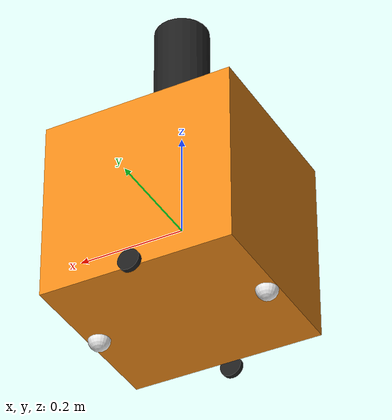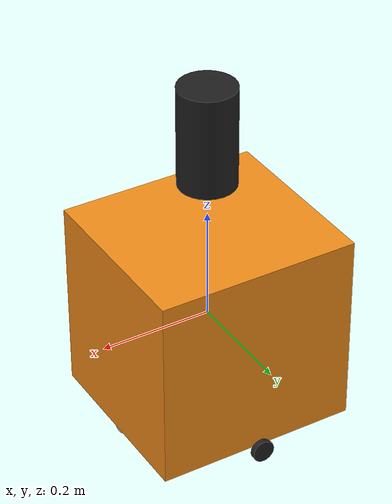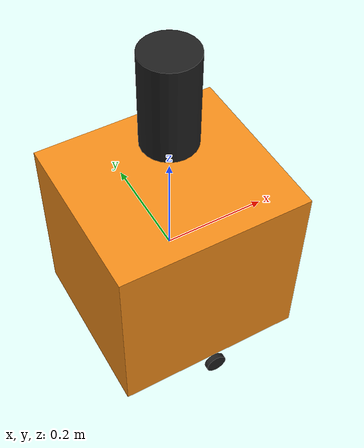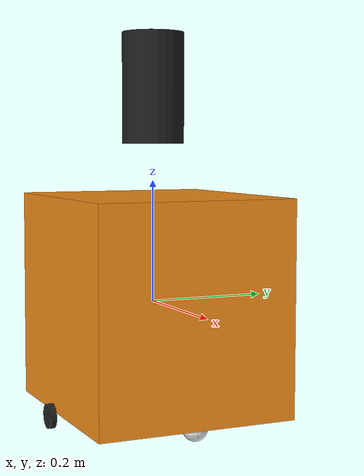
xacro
<?xml version="1.0"?>
<!-- Basic differential drive mobile base -->
<robot xmlns:xacro="http://www.ros.org/wiki/xacro" name="diffdrive_robot">
  <xacro:arg name="use_mock" default="true" />
  <xacro:arg name="prefix" default="" />

  <xacro:include filename="$(find diffdrive_arduino)/urdf/diffbot_description.urdf.xacro" />

  <!-- Import Rviz colors -->
  <xacro:include filename="$(find diffdrive_arduino)/urdf/diffbot.materials.xacro" />

  <!-- Import diffbot ros2_control description -->
  <xacro:include filename="$(find diffdrive_arduino)/ros2_control/diffbot.ros2_control.xacro" />

  <xacro:diffbot prefix="$(arg prefix)" />

  <xacro:diffbot_ros2_control
    name="DiffBot"
    prefix=""
    use_mock="$(arg use_mock)" />
</robot>

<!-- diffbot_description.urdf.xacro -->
<robot xmlns:xacro="http://www.ros.org/wiki/xacro">

  <xacro:macro name="diffbot" params="prefix">

  <!-- Constants for robot dimensions -->
  <xacro:property name="PI" value="3.1415926535897931"/>
  <xacro:property name="base_mass" value="5" /> <!-- arbitrary value for base mass -->
  <xacro:property name="base_width" value="0.36" />
  <xacro:property name="base_length" value="0.33" />
  <xacro:property name="base_height" value="0.35" />
  <xacro:property name="wheel_mass" value="0.3" /> <!-- arbitrary value for wheel mass -->
  <xacro:property name="wheel_len" value="0.010" />
  <xacro:property name="wheel_radius" value="0.020" />
  <xacro:property name="caster_wheel_mass" value="0.2" /> <!-- arbitrary value for caster wheel mass -->
  <xacro:property name="caster_wheel_radius" value="0.020" />
  <xacro:property name="z_offset" value="-${base_height/2}" /> <!-- Space btw top of beam and the each joint -->

  <!-- Base Link -->
  <link name="${prefix}base_link">
    <collision>
      <origin xyz="0 0 ${base_height/2}" rpy="0 0 0"/>
      <geometry>
        <box size="${base_width} ${base_length} ${base_height}"/>
      </geometry>
    </collision>

    <visual>
      <origin xyz="0 0 0" rpy="0 0 0"/>
      <geometry>
        <box size="${base_width} ${base_length} ${base_height}"/>
      </geometry>
      <material name="orange"/>
    </visual>

    <inertial>
      <origin xyz="0 0 0" rpy="0 0 0"/>
      <mass value="${base_mass}"/>
      <inertia
        ixx="${base_mass / 12.0 * (base_length*base_length + base_height*base_height)}" ixy="0.0" ixz="0.0"
        iyy="${base_mass / 12.0 * (base_height*base_height + base_width*base_width)}" iyz="0.0"
        izz="${base_mass / 12.0 * (base_width*base_width + base_length*base_length)}"/>
      </inertial>
    </link>

    <joint name="${prefix}left_wheel_joint" type="continuous">
      <parent link="${prefix}base_link"/>
      <child link="${prefix}left_wheel"/>
      <origin xyz="0 -${base_width/2} ${z_offset}" rpy="0 0 0"/>
      <axis xyz="0 1 0"/>
      <dynamics damping="0.2"/>
    </joint>

    <!-- left wheel Link -->
    <link name="${prefix}left_wheel">
      <collision>
        <origin xyz="0 0 0" rpy="${PI/2} 0 0"/>
        <geometry>
          <cylinder length="${wheel_len}" radius="${wheel_radius}"/>
        </geometry>
      </collision>

      <visual>
        <origin xyz="0 0 0" rpy="${PI/2} 0 0"/>
        <geometry>
          <cylinder length="${wheel_len}" radius="${wheel_radius}"/>
        </geometry>
        <material name="black"/>
      </visual>

      <inertial>
        <origin xyz="0 0 0" rpy="${PI/2} 0 0"/>
        <mass value="${wheel_mass}"/>
        <inertia
          ixx="${wheel_mass / 12.0 * (3*wheel_radius + wheel_len*wheel_len)}" ixy="0.0" ixz="0.0"
          iyy="${wheel_mass / 12.0 * wheel_radius*wheel_radius}" iyz="0.0"
          izz="${wheel_mass / 12.0 * wheel_radius*wheel_radius}"/>
        </inertial>
      </link>

    <joint name="${prefix}right_wheel_joint" type="continuous">
      <parent link="${prefix}base_link"/>
      <child link="${prefix}right_wheel"/>
      <origin xyz="0 ${base_width/2} ${z_offset}" rpy="0 0 0"/>
      <axis xyz="0 1 0"/>
      <dynamics damping="0.2"/>
    </joint>

    <!-- right wheel Link -->
    <link name="${prefix}right_wheel">
      <collision>
        <origin xyz="0 0 0" rpy="${PI/2} 0 0"/>
        <geometry>
          <cylinder length="${wheel_len}" radius="${wheel_radius}"/>
        </geometry>
      </collision>

      <visual>
        <origin xyz="0 0 0" rpy="${PI/2} 0 0"/>
        <geometry>
          <cylinder length="${wheel_len}" radius="${wheel_radius}"/>
        </geometry>
        <material name="black"/>
      </visual>

      <inertial>
        <origin xyz="0 0 0" rpy="${PI/2} 0 0"/>
        <mass value="${wheel_mass}"/>
        <inertia
          ixx="${wheel_mass / 12.0 * (3*wheel_radius + wheel_len*wheel_len)}" ixy="0.0" ixz="0.0"
          iyy="${wheel_mass / 12.0 * wheel_radius*wheel_radius}" iyz="0.0"
          izz="${wheel_mass / 12.0 * wheel_radius*wheel_radius}"/>
        </inertial>
      </link>

    <joint name="${prefix}caster_frontal_wheel_joint" type="fixed">
      <parent link="${prefix}base_link"/>
      <child link="${prefix}caster_frontal_wheel"/>
      <origin xyz="${base_width/2 - caster_wheel_radius} 0 ${z_offset}" rpy="0 0 0"/>
    </joint>

    <!-- caster frontal wheel Link -->
    <link name="${prefix}caster_frontal_wheel">
      <collision>
        <origin xyz="0 0 0" rpy="0 0 0"/>
        <geometry>
          <sphere radius="${caster_wheel_radius}"/>
        </geometry>
      </collision>

      <visual>
        <origin xyz="0 0 0" rpy="0 0 0"/>
        <geometry>
          <sphere radius="${caster_wheel_radius}"/>
        </geometry>
        <material name="white"/>
      </visual>

      <inertial>
        <origin xyz="0 0 0" rpy="0 0 0"/>
        <mass value="${caster_wheel_mass}"/>
        <inertia
          ixx="${caster_wheel_mass * 0.4 * (caster_wheel_radius * caster_wheel_radius)}" ixy="0.0" ixz="0.0"
          iyy="${caster_wheel_mass * 0.4 * (caster_wheel_radius * caster_wheel_radius)}" iyz="0.0"
          izz="${caster_wheel_mass * 0.4 * (caster_wheel_radius * caster_wheel_radius)}"/>
        </inertial>
      </link>

    <joint name="${prefix}caster_rear_wheel_joint" type="fixed">
      <parent link="${prefix}base_link"/>
      <child link="${prefix}caster_rear_wheel"/>
      <origin xyz="${-base_width/2 + caster_wheel_radius} 0 ${z_offset}" rpy="0 0 0"/>
    </joint>

    <!-- caster rear wheel Link -->
    <link name="${prefix}caster_rear_wheel">
      <collision>
        <origin xyz="0 0 0" rpy="0 0 0"/>
        <geometry>
          <sphere radius="${caster_wheel_radius}"/>
        </geometry>
      </collision>

      <visual>
        <origin xyz="0 0 0" rpy="0 0 0"/>
        <geometry>
          <sphere radius="${caster_wheel_radius}"/>
        </geometry>
        <material name="white"/>
      </visual>

      <inertial>
        <origin xyz="0 0 0" rpy="0 0 0"/>
        <mass value="${caster_wheel_mass}"/>
        <inertia
          ixx="${caster_wheel_mass * 0.4 * (caster_wheel_radius * caster_wheel_radius)}" ixy="0.0" ixz="0.0"
          iyy="${caster_wheel_mass * 0.4 * (caster_wheel_radius * caster_wheel_radius)}" iyz="0.0"
          izz="${caster_wheel_mass * 0.4 * (caster_wheel_radius * caster_wheel_radius)}"/>
        </inertial>
      </link>

      <!-- ****************************** LIDAR *****************************    -->
      <joint name="${prefix}lidar_joint" type="fixed">
        <parent link="${prefix}base_link"/>
        <child link="${prefix}lidar_link"/>
        <origin xyz="0 0 ${base_height}" rpy="0 0 0"/>
      </joint>

      <link name="${prefix}lidar_link">
        <inertial>
          <mass value="0.1"/>
          <origin xyz="0 0 0" rpy="0 0 0"/>
          <inertia ixx="0.0001" ixy="0" ixz="0" iyy="0.0001" iyz="0" izz="0.0001"/>
        </inertial>

        <collision>
          <origin xyz="0 0 0" rpy="0 0 0"/>
          <geometry>
            <cylinder radius="0.0508" length="0.18"/>
          </geometry>
        </collision>

        <visual>
          <origin xyz="0 0 0" rpy="0 0 0"/>
          <geometry>
            <cylinder radius="0.0508" length="0.18"/>
          </geometry>
          <material name="black"/>
        </visual>
      </link>

  </xacro:macro>

</robot>
